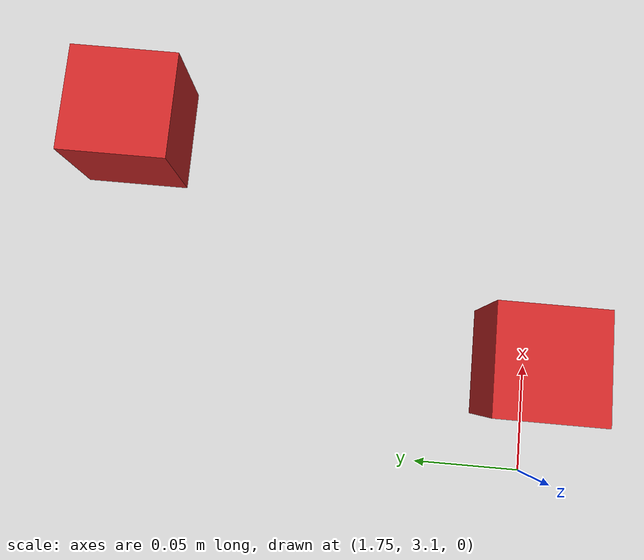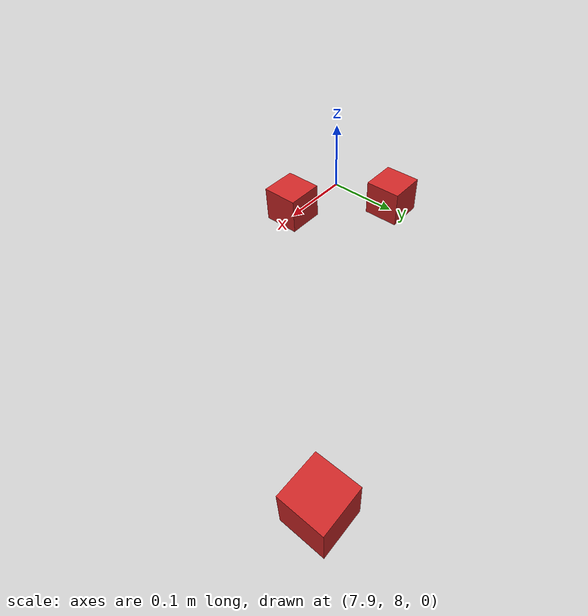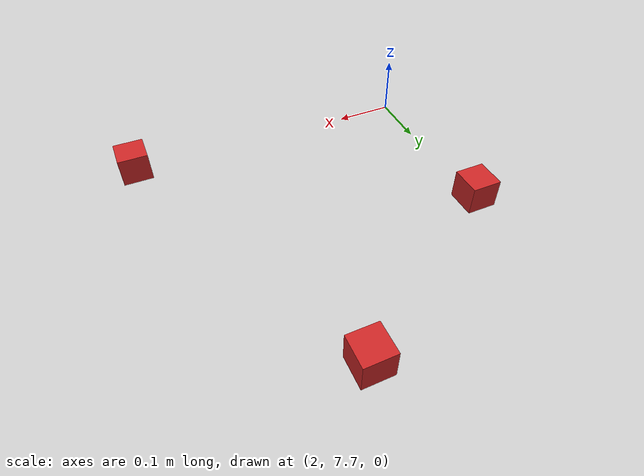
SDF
<sdf version="1.4">
  <world name="default">

    <scene>
      <ambient>0.4 0.4 0.4 1</ambient>
      <background>0.7 0.7 0.7 1</background>
      <shadows>true</shadows>
    </scene>

    <!-- A global light source -->
    <include>
      <uri>model://sun</uri>
    </include>

    <!-- A ground plane -->
    <include>
      <uri>model://ground_plane</uri>
    </include>

<model name='unit_box'>
      <link name='link'>
        <inertial>
          <mass>0.0125</mass>
          <inertia>
            <ixx>5.21e-06</ixx>
            <ixy>0</ixy>
            <ixz>0</ixz>
            <iyy>5.21e-06</iyy>
            <iyz>0</iyz>
            <izz>5.21e-06</izz>
          </inertia>
          <pose>0 0 0 0 -0 0</pose>
        </inertial>
        <self_collide>0</self_collide>
        <enable_wind>0</enable_wind>
        <kinematic>0</kinematic>
        <pose>0 0 0 0 -0 0</pose>
        <gravity>1</gravity>
        <visual name='visual'>
          <geometry>
            <box>
              <size>0.05 0.05 0.05</size>
            </box>
          </geometry>
          <material>
            <script>
              <name>Gazebo/Red</name>
              <uri>file://media/materials/scripts/gazebo.material</uri>
            </script>
            <shader type='pixel'>
              <normal_map>__default__</normal_map>
            </shader>
            <ambient>0.3 0.3 0.3 1</ambient>
            <diffuse>0.7 0.7 0.7 1</diffuse>
            <specular>0.01 0.01 0.01 1</specular>
            <emissive>0 0 0 1</emissive>
          </material>
          <pose>0 0 0 0 -0 0</pose>
          <transparency>0</transparency>
          <cast_shadows>1</cast_shadows>
        </visual>
        <collision name='collision'>
          <laser_retro>0</laser_retro>
          <max_contacts>10</max_contacts>
          <pose>0 0 0 0 -0 0</pose>
          <geometry>
            <box>
              <size>0.05 0.05 0.05</size>
            </box>
          </geometry>
          <surface>
            <friction>
              <ode>
                <mu>1</mu>
                <mu2>1</mu2>
                <fdir1>0 0 0</fdir1>
                <slip1>0</slip1>
                <slip2>0</slip2>
              </ode>
              <torsional>
                <coefficient>1</coefficient>
                <patch_radius>0</patch_radius>
                <surface_radius>0</surface_radius>
                <use_patch_radius>1</use_patch_radius>
                <ode>
                  <slip>0</slip>
                </ode>
              </torsional>
            </friction>
            <bounce>
              <restitution_coefficient>0</restitution_coefficient>
              <threshold>1e+06</threshold>
            </bounce>
            <contact>
              <collide_without_contact>0</collide_without_contact>
              <collide_without_contact_bitmask>1</collide_without_contact_bitmask>
              <collide_bitmask>1</collide_bitmask>
              <ode>
                <soft_cfm>0</soft_cfm>
                <soft_erp>0.2</soft_erp>
                <kp>1e+13</kp>
                <kd>1</kd>
                <max_vel>0.01</max_vel>
                <min_depth>0</min_depth>
              </ode>
              <bullet>
                <split_impulse>1</split_impulse>
                <split_impulse_penetration_threshold>-0.01</split_impulse_penetration_threshold>
                <soft_cfm>0</soft_cfm>
                <soft_erp>0.2</soft_erp>
                <kp>1e+13</kp>
                <kd>1</kd>
              </bullet>
            </contact>
          </surface>
        </collision>
      </link>
      <static>0</static>
      <allow_auto_disable>1</allow_auto_disable>
      <pose>2 8 0.025 0 -0 0</pose>
    </model>
<model name='unit_box2'>
      <link name='link2'>
        <inertial>
          <mass>0.0125</mass>
          <inertia>
            <ixx>5.21e-06</ixx>
            <ixy>0</ixy>
            <ixz>0</ixz>
            <iyy>5.21e-06</iyy>
            <iyz>0</iyz>
            <izz>5.21e-06</izz>
          </inertia>
          <pose>0 0 0 0 -0 0</pose>
        </inertial>
        <self_collide>0</self_collide>
        <enable_wind>0</enable_wind>
        <kinematic>0</kinematic>
        <pose>0 0 0 0 -0 0</pose>
        <gravity>1</gravity>
        <visual name='visual'>
          <geometry>
            <box>
              <size>0.05 0.05 0.05</size>
            </box>
          </geometry>
          <material>
            <script>
              <name>Gazebo/Red</name>
              <uri>file://media/materials/scripts/gazebo.material</uri>
            </script>
            <shader type='pixel'>
              <normal_map>__default__</normal_map>
            </shader>
            <ambient>0.3 0.3 0.3 1</ambient>
            <diffuse>0.7 0.7 0.7 1</diffuse>
            <specular>0.01 0.01 0.01 1</specular>
            <emissive>0 0 0 1</emissive>
          </material>
          <pose>0 0 0 0 -0 0</pose>
          <transparency>0</transparency>
          <cast_shadows>1</cast_shadows>
        </visual>
        <collision name='collision'>
          <laser_retro>0</laser_retro>
          <max_contacts>10</max_contacts>
          <pose>0 0 0 0 -0 0</pose>
          <geometry>
            <box>
              <size>0.05 0.05 0.05</size>
            </box>
          </geometry>
          <surface>
            <friction>
              <ode>
                <mu>1</mu>
                <mu2>1</mu2>
                <fdir1>0 0 0</fdir1>
                <slip1>0</slip1>
                <slip2>0</slip2>
              </ode>
              <torsional>
                <coefficient>1</coefficient>
                <patch_radius>0</patch_radius>
                <surface_radius>0</surface_radius>
                <use_patch_radius>1</use_patch_radius>
                <ode>
                  <slip>0</slip>
                </ode>
              </torsional>
            </friction>
            <bounce>
              <restitution_coefficient>0</restitution_coefficient>
              <threshold>1e+06</threshold>
            </bounce>
            <contact>
              <collide_without_contact>0</collide_without_contact>
              <collide_without_contact_bitmask>1</collide_without_contact_bitmask>
              <collide_bitmask>1</collide_bitmask>
              <ode>
                <soft_cfm>0</soft_cfm>
                <soft_erp>0.2</soft_erp>
                <kp>1e+13</kp>
                <kd>1</kd>
                <max_vel>0.01</max_vel>
                <min_depth>0</min_depth>
              </ode>
              <bullet>
                <split_impulse>1</split_impulse>
                <split_impulse_penetration_threshold>-0.01</split_impulse_penetration_threshold>
                <soft_cfm>0</soft_cfm>
                <soft_erp>0.2</soft_erp>
                <kp>1e+13</kp>
                <kd>1</kd>
              </bullet>
            </contact>
          </surface>
        </collision>
      </link>
      <static>0</static>
      <allow_auto_disable>1</allow_auto_disable>
      <pose>2.3 8.2 0.025 0 -0 0</pose>
    </model>
<model name='unit_box3'>
      <link name='link3'>
        <inertial>
          <mass>0.0125</mass>
          <inertia>
            <ixx>5.21e-06</ixx>
            <ixy>0</ixy>
            <ixz>0</ixz>
            <iyy>5.21e-06</iyy>
            <iyz>0</iyz>
            <izz>5.21e-06</izz>
          </inertia>
          <pose>0 0 0 0 -0 0</pose>
        </inertial>
        <self_collide>0</self_collide>
        <enable_wind>0</enable_wind>
        <kinematic>0</kinematic>
        <pose>0 0 0 0 -0 0</pose>
        <gravity>1</gravity>
        <visual name='visual'>
          <geometry>
            <box>
              <size>0.05 0.05 0.05</size>
            </box>
          </geometry>
          <material>
            <script>
              <name>Gazebo/Red</name>
              <uri>file://media/materials/scripts/gazebo.material</uri>
            </script>
            <shader type='pixel'>
              <normal_map>__default__</normal_map>
            </shader>
            <ambient>0.3 0.3 0.3 1</ambient>
            <diffuse>0.7 0.7 0.7 1</diffuse>
            <specular>0.01 0.01 0.01 1</specular>
            <emissive>0 0 0 1</emissive>
          </material>
          <pose>0 0 0 0 -0 0</pose>
          <transparency>0</transparency>
          <cast_shadows>1</cast_shadows>
        </visual>
        <collision name='collision'>
          <laser_retro>0</laser_retro>
          <max_contacts>10</max_contacts>
          <pose>0 0 0 0 -0 0</pose>
          <geometry>
            <box>
              <size>0.05 0.05 0.05</size>
            </box>
          </geometry>
          <surface>
            <friction>
              <ode>
                <mu>1</mu>
                <mu2>1</mu2>
                <fdir1>0 0 0</fdir1>
                <slip1>0</slip1>
                <slip2>0</slip2>
              </ode>
              <torsional>
                <coefficient>1</coefficient>
                <patch_radius>0</patch_radius>
                <surface_radius>0</surface_radius>
                <use_patch_radius>1</use_patch_radius>
                <ode>
                  <slip>0</slip>
                </ode>
              </torsional>
            </friction>
            <bounce>
              <restitution_coefficient>0</restitution_coefficient>
              <threshold>1e+06</threshold>
            </bounce>
            <contact>
              <collide_without_contact>0</collide_without_contact>
              <collide_without_contact_bitmask>1</collide_without_contact_bitmask>
              <collide_bitmask>1</collide_bitmask>
              <ode>
                <soft_cfm>0</soft_cfm>
                <soft_erp>0.2</soft_erp>
                <kp>1e+13</kp>
                <kd>1</kd>
                <max_vel>0.01</max_vel>
                <min_depth>0</min_depth>
              </ode>
              <bullet>
                <split_impulse>1</split_impulse>
                <split_impulse_penetration_threshold>-0.01</split_impulse_penetration_threshold>
                <soft_cfm>0</soft_cfm>
                <soft_erp>0.2</soft_erp>
                <kp>1e+13</kp>
                <kd>1</kd>
              </bullet>
            </contact>
          </surface>
        </collision>
      </link>
      <static>0</static>
      <allow_auto_disable>1</allow_auto_disable>
      <pose>2.5 7.7 0.025 0 -0 0</pose>
    </model>
<model name='unit_box4'>
      <link name='link4'>
        <inertial>
          <mass>0.0125</mass>
          <inertia>
            <ixx>5.21e-06</ixx>
            <ixy>0</ixy>
            <ixz>0</ixz>
            <iyy>5.21e-06</iyy>
            <iyz>0</iyz>
            <izz>5.21e-06</izz>
          </inertia>
          <pose>0 0 0 0 -0 0</pose>
        </inertial>
        <self_collide>0</self_collide>
        <enable_wind>0</enable_wind>
        <kinematic>0</kinematic>
        <pose>0 0 0 0 -0 0</pose>
        <gravity>1</gravity>
        <visual name='visual'>
          <geometry>
            <box>
              <size>0.05 0.05 0.05</size>
            </box>
          </geometry>
          <material>
            <script>
              <name>Gazebo/Red</name>
              <uri>file://media/materials/scripts/gazebo.material</uri>
            </script>
            <shader type='pixel'>
              <normal_map>__default__</normal_map>
            </shader>
            <ambient>0.3 0.3 0.3 1</ambient>
            <diffuse>0.7 0.7 0.7 1</diffuse>
            <specular>0.01 0.01 0.01 1</specular>
            <emissive>0 0 0 1</emissive>
          </material>
          <pose>0 0 0 0 -0 0</pose>
          <transparency>0</transparency>
          <cast_shadows>1</cast_shadows>
        </visual>
        <collision name='collision'>
          <laser_retro>0</laser_retro>
          <max_contacts>10</max_contacts>
          <pose>0 0 0 0 -0 0</pose>
          <geometry>
            <box>
              <size>0.05 0.05 0.05</size>
            </box>
          </geometry>
          <surface>
            <friction>
              <ode>
                <mu>1</mu>
                <mu2>1</mu2>
                <fdir1>0 0 0</fdir1>
                <slip1>0</slip1>
                <slip2>0</slip2>
              </ode>
              <torsional>
                <coefficient>1</coefficient>
                <patch_radius>0</patch_radius>
                <surface_radius>0</surface_radius>
                <use_patch_radius>1</use_patch_radius>
                <ode>
                  <slip>0</slip>
                </ode>
              </torsional>
            </friction>
            <bounce>
              <restitution_coefficient>0</restitution_coefficient>
              <threshold>1e+06</threshold>
            </bounce>
            <contact>
              <collide_without_contact>0</collide_without_contact>
              <collide_without_contact_bitmask>1</collide_without_contact_bitmask>
              <collide_bitmask>1</collide_bitmask>
              <ode>
                <soft_cfm>0</soft_cfm>
                <soft_erp>0.2</soft_erp>
                <kp>1e+13</kp>
                <kd>1</kd>
                <max_vel>0.01</max_vel>
                <min_depth>0</min_depth>
              </ode>
              <bullet>
                <split_impulse>1</split_impulse>
                <split_impulse_penetration_threshold>-0.01</split_impulse_penetration_threshold>
                <soft_cfm>0</soft_cfm>
                <soft_erp>0.2</soft_erp>
                <kp>1e+13</kp>
                <kd>1</kd>
              </bullet>
            </contact>
          </surface>
        </collision>
      </link>
      <static>0</static>
      <allow_auto_disable>1</allow_auto_disable>
      <pose>1.8 3.1 0.025 0 -0 0</pose>
    </model>
    <model name='unit_box5'>
      <link name='link5'>
        <inertial>
          <mass>0.0125</mass>
          <inertia>
            <ixx>5.21e-06</ixx>
            <ixy>0</ixy>
            <ixz>0</ixz>
            <iyy>5.21e-06</iyy>
            <iyz>0</iyz>
            <izz>5.21e-06</izz>
          </inertia>
          <pose>0 0 0 0 -0 0</pose>
        </inertial>
        <self_collide>0</self_collide>
        <enable_wind>0</enable_wind>
        <kinematic>0</kinematic>
        <pose>0 0 0 0 -0 0</pose>
        <gravity>1</gravity>
        <visual name='visual'>
          <geometry>
            <box>
              <size>0.05 0.05 0.05</size>
            </box>
          </geometry>
          <material>
            <script>
              <name>Gazebo/Red</name>
              <uri>file://media/materials/scripts/gazebo.material</uri>
            </script>
            <shader type='pixel'>
              <normal_map>__default__</normal_map>
            </shader>
            <ambient>0.3 0.3 0.3 1</ambient>
            <diffuse>0.7 0.7 0.7 1</diffuse>
            <specular>0.01 0.01 0.01 1</specular>
            <emissive>0 0 0 1</emissive>
          </material>
          <pose>0 0 0 0 -0 0</pose>
          <transparency>0</transparency>
          <cast_shadows>1</cast_shadows>
        </visual>
        <collision name='collision'>
          <laser_retro>0</laser_retro>
          <max_contacts>10</max_contacts>
          <pose>0 0 0 0 -0 0</pose>
          <geometry>
            <box>
              <size>0.05 0.05 0.05</size>
            </box>
          </geometry>
          <surface>
            <friction>
              <ode>
                <mu>1</mu>
                <mu2>1</mu2>
                <fdir1>0 0 0</fdir1>
                <slip1>0</slip1>
                <slip2>0</slip2>
              </ode>
              <torsional>
                <coefficient>1</coefficient>
                <patch_radius>0</patch_radius>
                <surface_radius>0</surface_radius>
                <use_patch_radius>1</use_patch_radius>
                <ode>
                  <slip>0</slip>
                </ode>
              </torsional>
            </friction>
            <bounce>
              <restitution_coefficient>0</restitution_coefficient>
              <threshold>1e+06</threshold>
            </bounce>
            <contact>
              <collide_without_contact>0</collide_without_contact>
              <collide_without_contact_bitmask>1</collide_without_contact_bitmask>
              <collide_bitmask>1</collide_bitmask>
              <ode>
                <soft_cfm>0</soft_cfm>
                <soft_erp>0.2</soft_erp>
                <kp>1e+13</kp>
                <kd>1</kd>
                <max_vel>0.01</max_vel>
                <min_depth>0</min_depth>
              </ode>
              <bullet>
                <split_impulse>1</split_impulse>
                <split_impulse_penetration_threshold>-0.01</split_impulse_penetration_threshold>
                <soft_cfm>0</soft_cfm>
                <soft_erp>0.2</soft_erp>
                <kp>1e+13</kp>
                <kd>1</kd>
              </bullet>
            </contact>
          </surface>
        </collision>
      </link>
      <static>0</static>
      <allow_auto_disable>1</allow_auto_disable>
      <pose>1.9 3.3 0.025 0 -0 0</pose>
    </model>

  <model name='unit_box6'>
      <link name='link6'>
        <inertial>
          <mass>0.0125</mass>
          <inertia>
            <ixx>5.21e-06</ixx>
            <ixy>0</ixy>
            <ixz>0</ixz>
            <iyy>5.21e-06</iyy>
            <iyz>0</iyz>
            <izz>5.21e-06</izz>
          </inertia>
          <pose>0 0 0 0 -0 0</pose>
        </inertial>
        <self_collide>0</self_collide>
        <enable_wind>0</enable_wind>
        <kinematic>0</kinematic>
        <pose>0 0 0 0 -0 0</pose>
        <gravity>1</gravity>
        <visual name='visual'>
          <geometry>
            <box>
              <size>0.05 0.05 0.05</size>
            </box>
          </geometry>
          <material>
            <script>
              <name>Gazebo/Red</name>
              <uri>file://media/materials/scripts/gazebo.material</uri>
            </script>
            <shader type='pixel'>
              <normal_map>__default__</normal_map>
            </shader>
            <ambient>0.3 0.3 0.3 1</ambient>
            <diffuse>0.7 0.7 0.7 1</diffuse>
            <specular>0.01 0.01 0.01 1</specular>
            <emissive>0 0 0 1</emissive>
          </material>
          <pose>0 0 0 0 -0 0</pose>
          <transparency>0</transparency>
          <cast_shadows>1</cast_shadows>
        </visual>
        <collision name='collision'>
          <laser_retro>0</laser_retro>
          <max_contacts>10</max_contacts>
          <pose>0 0 0 0 -0 0</pose>
          <geometry>
            <box>
              <size>0.05 0.05 0.05</size>
            </box>
          </geometry>
          <surface>
            <friction>
              <ode>
                <mu>1</mu>
                <mu2>1</mu2>
                <fdir1>0 0 0</fdir1>
                <slip1>0</slip1>
                <slip2>0</slip2>
              </ode>
              <torsional>
                <coefficient>1</coefficient>
                <patch_radius>0</patch_radius>
                <surface_radius>0</surface_radius>
                <use_patch_radius>1</use_patch_radius>
                <ode>
                  <slip>0</slip>
                </ode>
              </torsional>
            </friction>
            <bounce>
              <restitution_coefficient>0</restitution_coefficient>
              <threshold>1e+06</threshold>
            </bounce>
            <contact>
              <collide_without_contact>0</collide_without_contact>
              <collide_without_contact_bitmask>1</collide_without_contact_bitmask>
              <collide_bitmask>1</collide_bitmask>
              <ode>
                <soft_cfm>0</soft_cfm>
                <soft_erp>0.2</soft_erp>
                <kp>1e+13</kp>
                <kd>1</kd>
                <max_vel>0.01</max_vel>
                <min_depth>0</min_depth>
              </ode>
              <bullet>
                <split_impulse>1</split_impulse>
                <split_impulse_penetration_threshold>-0.01</split_impulse_penetration_threshold>
                <soft_cfm>0</soft_cfm>
                <soft_erp>0.2</soft_erp>
                <kp>1e+13</kp>
                <kd>1</kd>
              </bullet>
            </contact>
          </surface>
        </collision>
      </link>
      <static>0</static>
      <allow_auto_disable>1</allow_auto_disable>
      <pose>8.0 5.4 0.025 0 -0 0</pose>
    </model>

    <model name='unit_box7'>
      <link name='link7'>
        <inertial>
          <mass>0.0125</mass>
          <inertia>
            <ixx>5.21e-06</ixx>
            <ixy>0</ixy>
            <ixz>0</ixz>
            <iyy>5.21e-06</iyy>
            <iyz>0</iyz>
            <izz>5.21e-06</izz>
          </inertia>
          <pose>0 0 0 0 -0 0</pose>
        </inertial>
        <self_collide>0</self_collide>
        <enable_wind>0</enable_wind>
        <kinematic>0</kinematic>
        <pose>0 0 0 0 -0 0</pose>
        <gravity>1</gravity>
        <visual name='visual'>
          <geometry>
            <box>
              <size>0.05 0.05 0.05</size>
            </box>
          </geometry>
          <material>
            <script>
              <name>Gazebo/Red</name>
              <uri>file://media/materials/scripts/gazebo.material</uri>
            </script>
            <shader type='pixel'>
              <normal_map>__default__</normal_map>
            </shader>
            <ambient>0.3 0.3 0.3 1</ambient>
            <diffuse>0.7 0.7 0.7 1</diffuse>
            <specular>0.01 0.01 0.01 1</specular>
            <emissive>0 0 0 1</emissive>
          </material>
          <pose>0 0 0 0 -0 0</pose>
          <transparency>0</transparency>
          <cast_shadows>1</cast_shadows>
        </visual>
        <collision name='collision'>
          <laser_retro>0</laser_retro>
          <max_contacts>10</max_contacts>
          <pose>0 0 0 0 -0 0</pose>
          <geometry>
            <box>
              <size>0.05 0.05 0.05</size>
            </box>
          </geometry>
          <surface>
            <friction>
              <ode>
                <mu>1</mu>
                <mu2>1</mu2>
                <fdir1>0 0 0</fdir1>
                <slip1>0</slip1>
                <slip2>0</slip2>
              </ode>
              <torsional>
                <coefficient>1</coefficient>
                <patch_radius>0</patch_radius>
                <surface_radius>0</surface_radius>
                <use_patch_radius>1</use_patch_radius>
                <ode>
                  <slip>0</slip>
                </ode>
              </torsional>
            </friction>
            <bounce>
              <restitution_coefficient>0</restitution_coefficient>
              <threshold>1e+06</threshold>
            </bounce>
            <contact>
              <collide_without_contact>0</collide_without_contact>
              <collide_without_contact_bitmask>1</collide_without_contact_bitmask>
              <collide_bitmask>1</collide_bitmask>
              <ode>
                <soft_cfm>0</soft_cfm>
                <soft_erp>0.2</soft_erp>
                <kp>1e+13</kp>
                <kd>1</kd>
                <max_vel>0.01</max_vel>
                <min_depth>0</min_depth>
              </ode>
              <bullet>
                <split_impulse>1</split_impulse>
                <split_impulse_penetration_threshold>-0.01</split_impulse_penetration_threshold>
                <soft_cfm>0</soft_cfm>
                <soft_erp>0.2</soft_erp>
                <kp>1e+13</kp>
                <kd>1</kd>
              </bullet>
            </contact>
          </surface>
        </collision>
      </link>
      <static>0</static>
      <allow_auto_disable>1</allow_auto_disable>
      <pose>7.9 5.6 0.025 0 -0 0</pose>
    </model>

    <model name='unit_box8'>
      <link name='link8'>
        <inertial>
          <mass>0.0125</mass>
          <inertia>
            <ixx>5.21e-06</ixx>
            <ixy>0</ixy>
            <ixz>0</ixz>
            <iyy>5.21e-06</iyy>
            <iyz>0</iyz>
            <izz>5.21e-06</izz>
          </inertia>
          <pose>0 0 0 0 -0 0</pose>
        </inertial>
        <self_collide>0</self_collide>
        <enable_wind>0</enable_wind>
        <kinematic>0</kinematic>
        <pose>0 0 0 0 -0 0</pose>
        <gravity>1</gravity>
        <visual name='visual'>
          <geometry>
            <box>
              <size>0.05 0.05 0.05</size>
            </box>
          </geometry>
          <material>
            <script>
              <name>Gazebo/Red</name>
              <uri>file://media/materials/scripts/gazebo.material</uri>
            </script>
            <shader type='pixel'>
              <normal_map>__default__</normal_map>
            </shader>
            <ambient>0.3 0.3 0.3 1</ambient>
            <diffuse>0.7 0.7 0.7 1</diffuse>
            <specular>0.01 0.01 0.01 1</specular>
            <emissive>0 0 0 1</emissive>
          </material>
          <pose>0 0 0 0 -0 0</pose>
          <transparency>0</transparency>
          <cast_shadows>1</cast_shadows>
        </visual>
        <collision name='collision'>
          <laser_retro>0</laser_retro>
          <max_contacts>10</max_contacts>
          <pose>0 0 0 0 -0 0</pose>
          <geometry>
            <box>
              <size>0.05 0.05 0.05</size>
            </box>
          </geometry>
          <surface>
            <friction>
              <ode>
                <mu>1</mu>
                <mu2>1</mu2>
                <fdir1>0 0 0</fdir1>
                <slip1>0</slip1>
                <slip2>0</slip2>
              </ode>
              <torsional>
                <coefficient>1</coefficient>
                <patch_radius>0</patch_radius>
                <surface_radius>0</surface_radius>
                <use_patch_radius>1</use_patch_radius>
                <ode>
                  <slip>0</slip>
                </ode>
              </torsional>
            </friction>
            <bounce>
              <restitution_coefficient>0</restitution_coefficient>
              <threshold>1e+06</threshold>
            </bounce>
            <contact>
              <collide_without_contact>0</collide_without_contact>
              <collide_without_contact_bitmask>1</collide_without_contact_bitmask>
              <collide_bitmask>1</collide_bitmask>
              <ode>
                <soft_cfm>0</soft_cfm>
                <soft_erp>0.2</soft_erp>
                <kp>1e+13</kp>
                <kd>1</kd>
                <max_vel>0.01</max_vel>
                <min_depth>0</min_depth>
              </ode>
              <bullet>
                <split_impulse>1</split_impulse>
                <split_impulse_penetration_threshold>-0.01</split_impulse_penetration_threshold>
                <soft_cfm>0</soft_cfm>
                <soft_erp>0.2</soft_erp>
                <kp>1e+13</kp>
                <kd>1</kd>
              </bullet>
            </contact>
          </surface>
        </collision>
      </link>
      <static>0</static>
      <allow_auto_disable>1</allow_auto_disable>
      <pose>8.0 8.0 0.025 0 -0 0</pose>
    </model>

    <model name='unit_box9'>
      <link name='link9'>
        <inertial>
          <mass>0.0125</mass>
          <inertia>
            <ixx>5.21e-06</ixx>
            <ixy>0</ixy>
            <ixz>0</ixz>
            <iyy>5.21e-06</iyy>
            <iyz>0</iyz>
            <izz>5.21e-06</izz>
          </inertia>
          <pose>0 0 0 0 -0 0</pose>
        </inertial>
        <self_collide>0</self_collide>
        <enable_wind>0</enable_wind>
        <kinematic>0</kinematic>
        <pose>0 0 0 0 -0 0</pose>
        <gravity>1</gravity>
        <visual name='visual'>
          <geometry>
            <box>
              <size>0.05 0.05 0.05</size>
            </box>
          </geometry>
          <material>
            <script>
              <name>Gazebo/Red</name>
              <uri>file://media/materials/scripts/gazebo.material</uri>
            </script>
            <shader type='pixel'>
              <normal_map>__default__</normal_map>
            </shader>
            <ambient>0.3 0.3 0.3 1</ambient>
            <diffuse>0.7 0.7 0.7 1</diffuse>
            <specular>0.01 0.01 0.01 1</specular>
            <emissive>0 0 0 1</emissive>
          </material>
          <pose>0 0 0 0 -0 0</pose>
          <transparency>0</transparency>
          <cast_shadows>1</cast_shadows>
        </visual>
        <collision name='collision'>
          <laser_retro>0</laser_retro>
          <max_contacts>10</max_contacts>
          <pose>0 0 0 0 -0 0</pose>
          <geometry>
            <box>
              <size>0.05 0.05 0.05</size>
            </box>
          </geometry>
          <surface>
            <friction>
              <ode>
                <mu>1</mu>
                <mu2>1</mu2>
                <fdir1>0 0 0</fdir1>
                <slip1>0</slip1>
                <slip2>0</slip2>
              </ode>
              <torsional>
                <coefficient>1</coefficient>
                <patch_radius>0</patch_radius>
                <surface_radius>0</surface_radius>
                <use_patch_radius>1</use_patch_radius>
                <ode>
                  <slip>0</slip>
                </ode>
              </torsional>
            </friction>
            <bounce>
              <restitution_coefficient>0</restitution_coefficient>
              <threshold>1e+06</threshold>
            </bounce>
            <contact>
              <collide_without_contact>0</collide_without_contact>
              <collide_without_contact_bitmask>1</collide_without_contact_bitmask>
              <collide_bitmask>1</collide_bitmask>
              <ode>
                <soft_cfm>0</soft_cfm>
                <soft_erp>0.2</soft_erp>
                <kp>1e+13</kp>
                <kd>1</kd>
                <max_vel>0.01</max_vel>
                <min_depth>0</min_depth>
              </ode>
              <bullet>
                <split_impulse>1</split_impulse>
                <split_impulse_penetration_threshold>-0.01</split_impulse_penetration_threshold>
                <soft_cfm>0</soft_cfm>
                <soft_erp>0.2</soft_erp>
                <kp>1e+13</kp>
                <kd>1</kd>
              </bullet>
            </contact>
          </surface>
        </collision>
      </link>
      <static>0</static>
      <allow_auto_disable>1</allow_auto_disable>
      <pose>8.3 8.3 0.025 0 -0 0</pose>
    </model>

    <model name='unit_box10'>
      <link name='link10'>
        <inertial>
          <mass>0.0125</mass>
          <inertia>
            <ixx>5.21e-06</ixx>
            <ixy>0</ixy>
            <ixz>0</ixz>
            <iyy>5.21e-06</iyy>
            <iyz>0</iyz>
            <izz>5.21e-06</izz>
          </inertia>
          <pose>0 0 0 0 -0 0</pose>
        </inertial>
        <self_collide>0</self_collide>
        <enable_wind>0</enable_wind>
        <kinematic>0</kinematic>
        <pose>0 0 0 0 -0 0</pose>
        <gravity>1</gravity>
        <visual name='visual'>
          <geometry>
            <box>
              <size>0.05 0.05 0.05</size>
            </box>
          </geometry>
          <material>
            <script>
              <name>Gazebo/Red</name>
              <uri>file://media/materials/scripts/gazebo.material</uri>
            </script>
            <shader type='pixel'>
              <normal_map>__default__</normal_map>
            </shader>
            <ambient>0.3 0.3 0.3 1</ambient>
            <diffuse>0.7 0.7 0.7 1</diffuse>
            <specular>0.01 0.01 0.01 1</specular>
            <emissive>0 0 0 1</emissive>
          </material>
          <pose>0 0 0 0 -0 0</pose>
          <transparency>0</transparency>
          <cast_shadows>1</cast_shadows>
        </visual>
        <collision name='collision'>
          <laser_retro>0</laser_retro>
          <max_contacts>10</max_contacts>
          <pose>0 0 0 0 -0 0</pose>
          <geometry>
            <box>
              <size>0.05 0.05 0.05</size>
            </box>
          </geometry>
          <surface>
            <friction>
              <ode>
                <mu>1</mu>
                <mu2>1</mu2>
                <fdir1>0 0 0</fdir1>
                <slip1>0</slip1>
                <slip2>0</slip2>
              </ode>
              <torsional>
                <coefficient>1</coefficient>
                <patch_radius>0</patch_radius>
                <surface_radius>0</surface_radius>
                <use_patch_radius>1</use_patch_radius>
                <ode>
                  <slip>0</slip>
                </ode>
              </torsional>
            </friction>
            <bounce>
              <restitution_coefficient>0</restitution_coefficient>
              <threshold>1e+06</threshold>
            </bounce>
            <contact>
              <collide_without_contact>0</collide_without_contact>
              <collide_without_contact_bitmask>1</collide_without_contact_bitmask>
              <collide_bitmask>1</collide_bitmask>
              <ode>
                <soft_cfm>0</soft_cfm>
                <soft_erp>0.2</soft_erp>
                <kp>1e+13</kp>
                <kd>1</kd>
                <max_vel>0.01</max_vel>
                <min_depth>0</min_depth>
              </ode>
              <bullet>
                <split_impulse>1</split_impulse>
                <split_impulse_penetration_threshold>-0.01</split_impulse_penetration_threshold>
                <soft_cfm>0</soft_cfm>
                <soft_erp>0.2</soft_erp>
                <kp>1e+13</kp>
                <kd>1</kd>
              </bullet>
            </contact>
          </surface>
        </collision>
      </link>
      <static>0</static>
      <allow_auto_disable>1</allow_auto_disable>
      <pose>7.9 8.1 0.025 0 -0 0</pose>
    </model>
    <model name='unit_box11'>
      <link name='link11'>
        <inertial>
          <mass>0.0125</mass>
          <inertia>
            <ixx>5.21e-06</ixx>
            <ixy>0</ixy>
            <ixz>0</ixz>
            <iyy>5.21e-06</iyy>
            <iyz>0</iyz>
            <izz>5.21e-06</izz>
          </inertia>
          <pose>0 0 0 0 -0 0</pose>
        </inertial>
        <self_collide>0</self_collide>
        <enable_wind>0</enable_wind>
        <kinematic>0</kinematic>
        <pose>0 0 0 0 -0 0</pose>
        <gravity>1</gravity>
        <visual name='visual'>
          <geometry>
            <box>
              <size>0.05 0.05 0.05</size>
            </box>
          </geometry>
          <material>
            <script>
              <name>Gazebo/Red</name>
              <uri>file://media/materials/scripts/gazebo.material</uri>
            </script>
            <shader type='pixel'>
              <normal_map>__default__</normal_map>
            </shader>
            <ambient>0.3 0.3 0.3 1</ambient>
            <diffuse>0.7 0.7 0.7 1</diffuse>
            <specular>0.01 0.01 0.01 1</specular>
            <emissive>0 0 0 1</emissive>
          </material>
          <pose>0 0 0 0 -0 0</pose>
          <transparency>0</transparency>
          <cast_shadows>1</cast_shadows>
        </visual>
        <collision name='collision'>
          <laser_retro>0</laser_retro>
          <max_contacts>10</max_contacts>
          <pose>0 0 0 0 -0 0</pose>
          <geometry>
            <box>
              <size>0.05 0.05 0.05</size>
            </box>
          </geometry>
          <surface>
            <friction>
              <ode>
                <mu>1</mu>
                <mu2>1</mu2>
                <fdir1>0 0 0</fdir1>
                <slip1>0</slip1>
                <slip2>0</slip2>
              </ode>
              <torsional>
                <coefficient>1</coefficient>
                <patch_radius>0</patch_radius>
                <surface_radius>0</surface_radius>
                <use_patch_radius>1</use_patch_radius>
                <ode>
                  <slip>0</slip>
                </ode>
              </torsional>
            </friction>
            <bounce>
              <restitution_coefficient>0</restitution_coefficient>
              <threshold>1e+06</threshold>
            </bounce>
            <contact>
              <collide_without_contact>0</collide_without_contact>
              <collide_without_contact_bitmask>1</collide_without_contact_bitmask>
              <collide_bitmask>1</collide_bitmask>
              <ode>
                <soft_cfm>0</soft_cfm>
                <soft_erp>0.2</soft_erp>
                <kp>1e+13</kp>
                <kd>1</kd>
                <max_vel>0.01</max_vel>
                <min_depth>0</min_depth>
              </ode>
              <bullet>
                <split_impulse>1</split_impulse>
                <split_impulse_penetration_threshold>-0.01</split_impulse_penetration_threshold>
                <soft_cfm>0</soft_cfm>
                <soft_erp>0.2</soft_erp>
                <kp>1e+13</kp>
                <kd>1</kd>
              </bullet>
            </contact>
          </surface>
        </collision>
      </link>
      <static>0</static>
      <allow_auto_disable>1</allow_auto_disable>
      <pose>11 2 0.025 0 -0 0</pose>
    </model>
    <model name='unit_box12'>
      <link name='link12'>
        <inertial>
          <mass>0.0125</mass>
          <inertia>
            <ixx>5.21e-06</ixx>
            <ixy>0</ixy>
            <ixz>0</ixz>
            <iyy>5.21e-06</iyy>
            <iyz>0</iyz>
            <izz>5.21e-06</izz>
          </inertia>
          <pose>0 0 0 0 -0 0</pose>
        </inertial>
        <self_collide>0</self_collide>
        <enable_wind>0</enable_wind>
        <kinematic>0</kinematic>
        <pose>0 0 0 0 -0 0</pose>
        <gravity>1</gravity>
        <visual name='visual'>
          <geometry>
            <box>
              <size>0.05 0.05 0.05</size>
            </box>
          </geometry>
          <material>
            <script>
              <name>Gazebo/Red</name>
              <uri>file://media/materials/scripts/gazebo.material</uri>
            </script>
            <shader type='pixel'>
              <normal_map>__default__</normal_map>
            </shader>
            <ambient>0.3 0.3 0.3 1</ambient>
            <diffuse>0.7 0.7 0.7 1</diffuse>
            <specular>0.01 0.01 0.01 1</specular>
            <emissive>0 0 0 1</emissive>
          </material>
          <pose>0 0 0 0 -0 0</pose>
          <transparency>0</transparency>
          <cast_shadows>1</cast_shadows>
        </visual>
        <collision name='collision'>
          <laser_retro>0</laser_retro>
          <max_contacts>10</max_contacts>
          <pose>0 0 0 0 -0 0</pose>
          <geometry>
            <box>
              <size>0.05 0.05 0.05</size>
            </box>
          </geometry>
          <surface>
            <friction>
              <ode>
                <mu>1</mu>
                <mu2>1</mu2>
                <fdir1>0 0 0</fdir1>
                <slip1>0</slip1>
                <slip2>0</slip2>
              </ode>
              <torsional>
                <coefficient>1</coefficient>
                <patch_radius>0</patch_radius>
                <surface_radius>0</surface_radius>
                <use_patch_radius>1</use_patch_radius>
                <ode>
                  <slip>0</slip>
                </ode>
              </torsional>
            </friction>
            <bounce>
              <restitution_coefficient>0</restitution_coefficient>
              <threshold>1e+06</threshold>
            </bounce>
            <contact>
              <collide_without_contact>0</collide_without_contact>
              <collide_without_contact_bitmask>1</collide_without_contact_bitmask>
              <collide_bitmask>1</collide_bitmask>
              <ode>
                <soft_cfm>0</soft_cfm>
                <soft_erp>0.2</soft_erp>
                <kp>1e+13</kp>
                <kd>1</kd>
                <max_vel>0.01</max_vel>
                <min_depth>0</min_depth>
              </ode>
              <bullet>
                <split_impulse>1</split_impulse>
                <split_impulse_penetration_threshold>-0.01</split_impulse_penetration_threshold>
                <soft_cfm>0</soft_cfm>
                <soft_erp>0.2</soft_erp>
                <kp>1e+13</kp>
                <kd>1</kd>
              </bullet>
            </contact>
          </surface>
        </collision>
      </link>
      <static>0</static>
      <allow_auto_disable>1</allow_auto_disable>
      <pose>11.3 2.2 0.025 0 -0 0</pose>
    </model>

    <physics type="ode">
      <real_time_update_rate>1000.0</real_time_update_rate>
      <max_step_size>0.001</max_step_size>
      <real_time_factor>1</real_time_factor>
      <ode>
        <solver>
          <type>quick</type>
          <iters>150</iters>
          <precon_iters>0</precon_iters>
          <sor>1.400000</sor>
          <use_dynamic_moi_rescaling>1</use_dynamic_moi_rescaling>
        </solver>
        <constraints>
          <cfm>0.00001</cfm>
          <erp>0.2</erp>
          <contact_max_correcting_vel>2000.000000</contact_max_correcting_vel>
          <contact_surface_layer>0.01000</contact_surface_layer>
        </constraints>
      </ode>
    </physics>
  </world>

</sdf>
